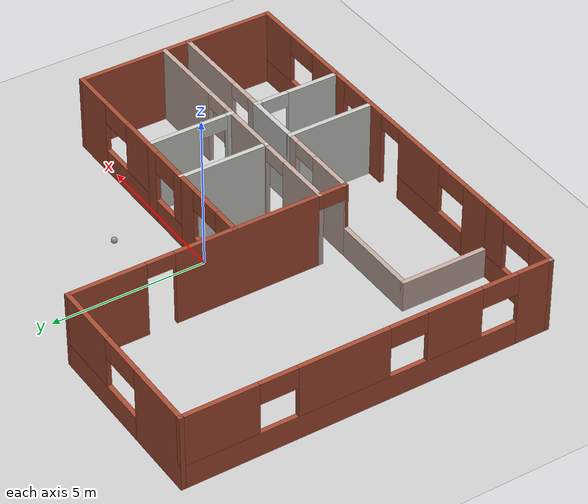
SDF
<sdf version="1.6">
 <world name="default">
  <model name="ground_plane">
   <static>1</static>
   <link name="link">
    <collision name="collision">
     <geometry><plane><normal>0 0 1</normal><size>100 100</size></plane></geometry>
     <surface><friction><ode><mu>100</mu><mu2>50</mu2></ode></friction></surface>
    </collision>
    <visual name="visual">
     <cast_shadows>0</cast_shadows>
     <geometry><plane><normal>0 0 1</normal><size>100 100</size></plane></geometry>
     <material>
      <script><uri>file://media/materials/scripts/gazebo.material</uri><name>Gazebo/Grey</name></script>
     </material>
    </visual>
   </link>
  </model>
  <model name="mybuilding">
   <pose>-0.45888 -0.542474 0 0 -0 0</pose>
   <link name="Wall_0">
    <pose>-7.19982 0.000123 0 0 -0 1.5708</pose>
    <visual name="Wall_0_Visual_0">
     <pose>-5.41232 0 1.25 0 -0 0</pose>
     <geometry><box><size>1.17536 0.15 2.5</size></box></geometry>
     <material>
      <script><uri>file://media/materials/scripts/gazebo.material</uri><name>Gazebo/Bricks</name></script>
      <ambient>1 1 1 1</ambient>
     </material>
     <meta><layer>0</layer></meta>
    </visual>
    <collision name="Wall_0_Collision_0">
     <geometry><box><size>1.17536 0.15 2.5</size></box></geometry>
     <pose>-5.41232 0 1.25 0 -0 0</pose>
    </collision>
    <visual name="Wall_0_Visual_1">
     <pose>0.587679 0 0.4 0 -0 0</pose>
     <geometry><box><size>10.8246 0.15 0.8</size></box></geometry>
     <material>
      <script><uri>file://media/materials/scripts/gazebo.material</uri><name>Gazebo/Bricks</name></script>
      <ambient>1 1 1 1</ambient>
     </material>
     <meta><layer>0</layer></meta>
    </visual>
    <collision name="Wall_0_Collision_1">
     <geometry><box><size>10.8246 0.15 0.8</size></box></geometry>
     <pose>0.587679 0 0.4 0 -0 0</pose>
    </collision>
    <visual name="Wall_0_Visual_2">
     <pose>-2.71261 0 1.65 0 -0 0</pose>
     <geometry><box><size>1.82405 0.15 1.7</size></box></geometry>
     <material>
      <script><uri>file://media/materials/scripts/gazebo.material</uri><name>Gazebo/Bricks</name></script>
      <ambient>1 1 1 1</ambient>
     </material>
     <meta><layer>0</layer></meta>
    </visual>
    <collision name="Wall_0_Collision_2">
     <geometry><box><size>1.82405 0.15 1.7</size></box></geometry>
     <pose>-2.71261 0 1.65 0 -0 0</pose>
    </collision>
    <visual name="Wall_0_Visual_3">
     <pose>0.869727 0 1.65 0 -0 0</pose>
     <geometry><box><size>2.94063 0.15 1.7</size></box></geometry>
     <material>
      <script><uri>file://media/materials/scripts/gazebo.material</uri><name>Gazebo/Bricks</name></script>
      <ambient>1 1 1 1</ambient>
     </material>
     <meta><layer>0</layer></meta>
    </visual>
    <collision name="Wall_0_Collision_3">
     <geometry><box><size>2.94063 0.15 1.7</size></box></geometry>
     <pose>0.869727 0 1.65 0 -0 0</pose>
    </collision>
    <visual name="Wall_0_Visual_4">
     <pose>4.77002 0 1.65 0 -0 0</pose>
     <geometry><box><size>2.45996 0.15 1.7</size></box></geometry>
     <material>
      <script><uri>file://media/materials/scripts/gazebo.material</uri><name>Gazebo/Bricks</name></script>
      <ambient>1 1 1 1</ambient>
     </material>
     <meta><layer>0</layer></meta>
    </visual>
    <collision name="Wall_0_Collision_4">
     <geometry><box><size>2.45996 0.15 1.7</size></box></geometry>
     <pose>4.77002 0 1.65 0 -0 0</pose>
    </collision>
    <visual name="Wall_0_Visual_5">
     <pose>-4.22464 0 2.15 0 -0 0</pose>
     <geometry><box><size>1.2 0.15 0.7</size></box></geometry>
     <material>
      <script><uri>file://media/materials/scripts/gazebo.material</uri><name>Gazebo/Bricks</name></script>
      <ambient>1 1 1 1</ambient>
     </material>
     <meta><layer>0</layer></meta>
    </visual>
    <collision name="Wall_0_Collision_5">
     <geometry><box><size>1.2 0.15 0.7</size></box></geometry>
     <pose>-4.22464 0 2.15 0 -0 0</pose>
    </collision>
    <visual name="Wall_0_Visual_6">
     <pose>-1.20059 0 2.15 0 -0 0</pose>
     <geometry><box><size>1.2 0.15 0.7</size></box></geometry>
     <material>
      <script><uri>file://media/materials/scripts/gazebo.material</uri><name>Gazebo/Bricks</name></script>
      <ambient>1 1 1 1</ambient>
     </material>
     <meta><layer>0</layer></meta>
    </visual>
    <collision name="Wall_0_Collision_6">
     <geometry><box><size>1.2 0.15 0.7</size></box></geometry>
     <pose>-1.20059 0 2.15 0 -0 0</pose>
    </collision>
    <visual name="Wall_0_Visual_7">
     <pose>2.94004 0 2.15 0 -0 0</pose>
     <geometry><box><size>1.2 0.15 0.7</size></box></geometry>
     <material>
      <script><uri>file://media/materials/scripts/gazebo.material</uri><name>Gazebo/Bricks</name></script>
      <ambient>1 1 1 1</ambient>
     </material>
     <meta><layer>0</layer></meta>
    </visual>
    <collision name="Wall_0_Collision_7">
     <geometry><box><size>1.2 0.15 0.7</size></box></geometry>
     <pose>2.94004 0 2.15 0 -0 0</pose>
    </collision>
   </link>
   <link name="Wall_10">
    <collision name="Wall_10_Collision">
     <geometry><box><size>3 0.15 1</size></box></geometry>
     <pose>0 0 0.5 0 -0 0</pose>
    </collision>
    <visual name="Wall_10_Visual">
     <pose>0 0 0.5 0 -0 0</pose>
     <geometry><box><size>3 0.15 1</size></box></geometry>
     <material>
      <script><uri>file://media/materials/scripts/gazebo.material</uri><name>Gazebo/Grey</name></script>
      <ambient>0.760784 0.662745 0.627451 1</ambient>
     </material>
     <meta><layer>0</layer></meta>
    </visual>
    <pose>-2.92506 -3.07512 0 0 -0 0</pose>
   </link>
   <link name="Wall_12">
    <pose>-4.27494 5.925 0 0 0 -4.1e-05</pose>
    <visual name="Wall_12_Visual_0">
     <pose>-1.84987 0 1.25 0 -0 0</pose>
     <geometry><box><size>2.30027 0.15 2.5</size></box></geometry>
     <material>
      <script><uri>file://media/materials/scripts/gazebo.material</uri><name>Gazebo/Bricks</name></script>
      <ambient>1 1 1 1</ambient>
     </material>
     <meta><layer>0</layer></meta>
    </visual>
    <collision name="Wall_12_Collision_0">
     <geometry><box><size>2.30027 0.15 2.5</size></box></geometry>
     <pose>-1.84987 0 1.25 0 -0 0</pose>
    </collision>
    <visual name="Wall_12_Visual_1">
     <pose>1.15013 0 0.4 0 -0 0</pose>
     <geometry><box><size>3.69973 0.15 0.8</size></box></geometry>
     <material>
      <script><uri>file://media/materials/scripts/gazebo.material</uri><name>Gazebo/Bricks</name></script>
      <ambient>1 1 1 1</ambient>
     </material>
     <meta><layer>0</layer></meta>
    </visual>
    <collision name="Wall_12_Collision_1">
     <geometry><box><size>3.69973 0.15 0.8</size></box></geometry>
     <pose>1.15013 0 0.4 0 -0 0</pose>
    </collision>
    <visual name="Wall_12_Visual_2">
     <pose>1.90013 0 1.65 0 -0 0</pose>
     <geometry><box><size>2.19973 0.15 1.7</size></box></geometry>
     <material>
      <script><uri>file://media/materials/scripts/gazebo.material</uri><name>Gazebo/Bricks</name></script>
      <ambient>1 1 1 1</ambient>
     </material>
     <meta><layer>0</layer></meta>
    </visual>
    <collision name="Wall_12_Collision_2">
     <geometry><box><size>2.19973 0.15 1.7</size></box></geometry>
     <pose>1.90013 0 1.65 0 -0 0</pose>
    </collision>
    <visual name="Wall_12_Visual_3">
     <pose>0.05027 0 2.15 0 -0 0</pose>
     <geometry><box><size>1.5 0.15 0.7</size></box></geometry>
     <material>
      <script><uri>file://media/materials/scripts/gazebo.material</uri><name>Gazebo/Bricks</name></script>
      <ambient>1 1 1 1</ambient>
     </material>
     <meta><layer>0</layer></meta>
    </visual>
    <collision name="Wall_12_Collision_3">
     <geometry><box><size>1.5 0.15 0.7</size></box></geometry>
     <pose>0.05027 0 2.15 0 -0 0</pose>
    </collision>
   </link>
   <link name="Wall_2">
    <collision name="Wall_2_Collision">
     <geometry><box><size>0.15 0.15 2.5</size></box></geometry>
     <pose>0 0 1.25 0 -0 0</pose>
    </collision>
    <visual name="Wall_2_Visual">
     <pose>0 0 1.25 0 -0 0</pose>
     <geometry><box><size>0.15 0.15 2.5</size></box></geometry>
     <material>
      <script><uri>file://media/materials/scripts/gazebo.material</uri><name>Gazebo/Grey</name></script>
      <ambient>1 1 1 1</ambient>
     </material>
     <meta><layer>0</layer></meta>
    </visual>
    <pose>-7.19982 -5.92488 0 0 -0 0</pose>
   </link>
   <link name="Wall_25">
    <pose>-1.35006 1.42488 0 0 0 -1.5708</pose>
    <visual name="Wall_25_Visual_0">
     <pose>-3.31667 0 1.25 0 -0 0</pose>
     <geometry><box><size>2.51667 0.15 2.5</size></box></geometry>
     <material>
      <script><uri>file://media/materials/scripts/gazebo.material</uri><name>Gazebo/Bricks</name></script>
      <ambient>0.760784 0.662745 0.627451 1</ambient>
     </material>
     <meta><layer>0</layer></meta>
    </visual>
    <collision name="Wall_25_Collision_0">
     <geometry><box><size>2.51667 0.15 2.5</size></box></geometry>
     <pose>-3.31667 0 1.25 0 -0 0</pose>
    </collision>
    <visual name="Wall_25_Visual_1">
     <pose>1.20636 0 1.25 0 -0 0</pose>
     <geometry><box><size>4.72939 0.15 2.5</size></box></geometry>
     <material>
      <script><uri>file://media/materials/scripts/gazebo.material</uri><name>Gazebo/Bricks</name></script>
      <ambient>0.760784 0.662745 0.627451 1</ambient>
     </material>
     <meta><layer>0</layer></meta>
    </visual>
    <collision name="Wall_25_Collision_1">
     <geometry><box><size>4.72939 0.15 2.5</size></box></geometry>
     <pose>1.20636 0 1.25 0 -0 0</pose>
    </collision>
    <visual name="Wall_25_Visual_2">
     <pose>4.52303 0 1.25 0 -0 0</pose>
     <geometry><box><size>0.103938 0.15 2.5</size></box></geometry>
     <material>
      <script><uri>file://media/materials/scripts/gazebo.material</uri><name>Gazebo/Bricks</name></script>
      <ambient>0.760784 0.662745 0.627451 1</ambient>
     </material>
     <meta><layer>0</layer></meta>
    </visual>
    <collision name="Wall_25_Collision_2">
     <geometry><box><size>0.103938 0.15 2.5</size></box></geometry>
     <pose>4.52303 0 1.25 0 -0 0</pose>
    </collision>
    <visual name="Wall_25_Visual_3">
     <pose>-1.60833 0 2.25 0 -0 0</pose>
     <geometry><box><size>0.9 0.15 0.5</size></box></geometry>
     <material>
      <script><uri>file://media/materials/scripts/gazebo.material</uri><name>Gazebo/Bricks</name></script>
      <ambient>0.760784 0.662745 0.627451 1</ambient>
     </material>
     <meta><layer>0</layer></meta>
    </visual>
    <collision name="Wall_25_Collision_3">
     <geometry><box><size>0.9 0.15 0.5</size></box></geometry>
     <pose>-1.60833 0 2.25 0 -0 0</pose>
    </collision>
    <visual name="Wall_25_Visual_4">
     <pose>4.02106 0 2.25 0 -0 0</pose>
     <geometry><box><size>0.9 0.15 0.5</size></box></geometry>
     <material>
      <script><uri>file://media/materials/scripts/gazebo.material</uri><name>Gazebo/Bricks</name></script>
      <ambient>0.760784 0.662745 0.627451 1</ambient>
     </material>
     <meta><layer>0</layer></meta>
    </visual>
    <collision name="Wall_25_Collision_4">
     <geometry><box><size>0.9 0.15 0.5</size></box></geometry>
     <pose>4.02106 0 2.25 0 -0 0</pose>
    </collision>
   </link>
   <link name="Wall_27">
    <pose>-1.42506 -5.92512 0 0 -0 0</pose>
    <visual name="Wall_27_Visual_0">
     <pose>-2.4089 0 1.25 0 -0 0</pose>
     <geometry><box><size>1.1822 0.15 2.5</size></box></geometry>
     <material>
      <script><uri>file://media/materials/scripts/gazebo.material</uri><name>Gazebo/Bricks</name></script>
      <ambient>1 1 1 1</ambient>
     </material>
     <meta><layer>0</layer></meta>
    </visual>
    <collision name="Wall_27_Collision_0">
     <geometry><box><size>1.1822 0.15 2.5</size></box></geometry>
     <pose>-2.4089 0 1.25 0 -0 0</pose>
    </collision>
    <visual name="Wall_27_Visual_1">
     <pose>2.65139 0 1.25 0 -0 0</pose>
     <geometry><box><size>0.697224 0.15 2.5</size></box></geometry>
     <material>
      <script><uri>file://media/materials/scripts/gazebo.material</uri><name>Gazebo/Bricks</name></script>
      <ambient>1 1 1 1</ambient>
     </material>
     <meta><layer>0</layer></meta>
    </visual>
    <collision name="Wall_27_Collision_1">
     <geometry><box><size>0.697224 0.15 2.5</size></box></geometry>
     <pose>2.65139 0 1.25 0 -0 0</pose>
    </collision>
    <visual name="Wall_27_Visual_2">
     <pose>-0.207514 0 0.4 0 -0 0</pose>
     <geometry><box><size>3.22058 0.15 0.8</size></box></geometry>
     <material>
      <script><uri>file://media/materials/scripts/gazebo.material</uri><name>Gazebo/Bricks</name></script>
      <ambient>1 1 1 1</ambient>
     </material>
     <meta><layer>0</layer></meta>
    </visual>
    <collision name="Wall_27_Collision_2">
     <geometry><box><size>3.22058 0.15 0.8</size></box></geometry>
     <pose>-0.207514 0 0.4 0 -0 0</pose>
    </collision>
    <visual name="Wall_27_Visual_3">
     <pose>0.392486 0 1.65 0 -0 0</pose>
     <geometry><box><size>2.02058 0.15 1.7</size></box></geometry>
     <material>
      <script><uri>file://media/materials/scripts/gazebo.material</uri><name>Gazebo/Bricks</name></script>
      <ambient>1 1 1 1</ambient>
     </material>
     <meta><layer>0</layer></meta>
    </visual>
    <collision name="Wall_27_Collision_3">
     <geometry><box><size>2.02058 0.15 1.7</size></box></geometry>
     <pose>0.392486 0 1.65 0 -0 0</pose>
    </collision>
    <visual name="Wall_27_Visual_4">
     <pose>-1.2178 0 2.15 0 -0 0</pose>
     <geometry><box><size>1.2 0.15 0.7</size></box></geometry>
     <material>
      <script><uri>file://media/materials/scripts/gazebo.material</uri><name>Gazebo/Bricks</name></script>
      <ambient>1 1 1 1</ambient>
     </material>
     <meta><layer>0</layer></meta>
    </visual>
    <collision name="Wall_27_Collision_4">
     <geometry><box><size>1.2 0.15 0.7</size></box></geometry>
     <pose>-1.2178 0 2.15 0 -0 0</pose>
    </collision>
    <visual name="Wall_27_Visual_5">
     <pose>1.85278 0 2.25 0 -0 0</pose>
     <geometry><box><size>0.9 0.15 0.5</size></box></geometry>
     <material>
      <script><uri>file://media/materials/scripts/gazebo.material</uri><name>Gazebo/Bricks</name></script>
      <ambient>1 1 1 1</ambient>
     </material>
     <meta><layer>0</layer></meta>
    </visual>
    <collision name="Wall_27_Collision_5">
     <geometry><box><size>0.9 0.15 0.5</size></box></geometry>
     <pose>1.85278 0 2.25 0 -0 0</pose>
    </collision>
   </link>
   <link name="Wall_29">
    <pose>0.074944 -3.07512 0 0 -0 0</pose>
    <visual name="Wall_29_Visual_0">
     <pose>-0.682303 0 1.25 0 -0 0</pose>
     <geometry><box><size>1.63539 0.15 2.5</size></box></geometry>
     <material>
      <script><uri>file://media/materials/scripts/gazebo.material</uri><name>Gazebo/Grey</name></script>
      <ambient>0.760784 0.662745 0.627451 1</ambient>
     </material>
     <meta><layer>0</layer></meta>
    </visual>
    <collision name="Wall_29_Collision_0">
     <geometry><box><size>1.63539 0.15 2.5</size></box></geometry>
     <pose>-0.682303 0 1.25 0 -0 0</pose>
    </collision>
    <visual name="Wall_29_Visual_1">
     <pose>1.2677 0 1.25 0 -0 0</pose>
     <geometry><box><size>0.464606 0.15 2.5</size></box></geometry>
     <material>
      <script><uri>file://media/materials/scripts/gazebo.material</uri><name>Gazebo/Grey</name></script>
      <ambient>0.760784 0.662745 0.627451 1</ambient>
     </material>
     <meta><layer>0</layer></meta>
    </visual>
    <collision name="Wall_29_Collision_1">
     <geometry><box><size>0.464606 0.15 2.5</size></box></geometry>
     <pose>1.2677 0 1.25 0 -0 0</pose>
    </collision>
    <visual name="Wall_29_Visual_2">
     <pose>0.585394 0 2.25 0 -0 0</pose>
     <geometry><box><size>0.9 0.15 0.5</size></box></geometry>
     <material>
      <script><uri>file://media/materials/scripts/gazebo.material</uri><name>Gazebo/Grey</name></script>
      <ambient>0.760784 0.662745 0.627451 1</ambient>
     </material>
     <meta><layer>0</layer></meta>
    </visual>
    <collision name="Wall_29_Collision_2">
     <geometry><box><size>0.9 0.15 0.5</size></box></geometry>
     <pose>0.585394 0 2.25 0 -0 0</pose>
    </collision>
   </link>
   <link name="Wall_31">
    <collision name="Wall_31_Collision">
     <geometry><box><size>3 0.15 2.5</size></box></geometry>
     <pose>0 0 1.25 0 -0 0</pose>
    </collision>
    <visual name="Wall_31_Visual">
     <pose>0 0 1.25 0 -0 0</pose>
     <geometry><box><size>3 0.15 2.5</size></box></geometry>
     <material>
      <script><uri>file://media/materials/scripts/gazebo.material</uri><name>Gazebo/CeilingTiled</name></script>
      <ambient>0.760784 0.662745 0.627451 1</ambient>
     </material>
     <meta><layer>0</layer></meta>
    </visual>
    <pose>1.49994 -4.50012 0 0 0 -1.5708</pose>
   </link>
   <link name="Wall_33">
    <pose>2.42495 -5.92512 0 0 -0 0</pose>
    <visual name="Wall_33_Visual_0">
     <pose>-0.794872 0 1.25 0 -0 0</pose>
     <geometry><box><size>0.410255 0.15 2.5</size></box></geometry>
     <material>
      <script><uri>file://media/materials/scripts/gazebo.material</uri><name>Gazebo/Bricks</name></script>
      <ambient>1 1 1 1</ambient>
     </material>
     <meta><layer>0</layer></meta>
    </visual>
    <collision name="Wall_33_Collision_0">
     <geometry><box><size>0.410255 0.15 2.5</size></box></geometry>
     <pose>-0.794872 0 1.25 0 -0 0</pose>
    </collision>
    <visual name="Wall_33_Visual_1">
     <pose>0.205128 0 0.4 0 -0 0</pose>
     <geometry><box><size>1.58974 0.15 0.8</size></box></geometry>
     <material>
      <script><uri>file://media/materials/scripts/gazebo.material</uri><name>Gazebo/Bricks</name></script>
      <ambient>1 1 1 1</ambient>
     </material>
     <meta><layer>0</layer></meta>
    </visual>
    <collision name="Wall_33_Collision_1">
     <geometry><box><size>1.58974 0.15 0.8</size></box></geometry>
     <pose>0.205128 0 0.4 0 -0 0</pose>
    </collision>
    <visual name="Wall_33_Visual_2">
     <pose>0.705128 0 1.65 0 -0 0</pose>
     <geometry><box><size>0.589745 0.15 1.7</size></box></geometry>
     <material>
      <script><uri>file://media/materials/scripts/gazebo.material</uri><name>Gazebo/Bricks</name></script>
      <ambient>1 1 1 1</ambient>
     </material>
     <meta><layer>0</layer></meta>
    </visual>
    <collision name="Wall_33_Collision_2">
     <geometry><box><size>0.589745 0.15 1.7</size></box></geometry>
     <pose>0.705128 0 1.65 0 -0 0</pose>
    </collision>
    <visual name="Wall_33_Visual_3">
     <pose>-0.089745 0 2.15 0 -0 0</pose>
     <geometry><box><size>1 0.15 0.7</size></box></geometry>
     <material>
      <script><uri>file://media/materials/scripts/gazebo.material</uri><name>Gazebo/Bricks</name></script>
      <ambient>1 1 1 1</ambient>
     </material>
     <meta><layer>0</layer></meta>
    </visual>
    <collision name="Wall_33_Collision_3">
     <geometry><box><size>1 0.15 0.7</size></box></geometry>
     <pose>-0.089745 0 2.15 0 -0 0</pose>
    </collision>
   </link>
   <link name="Wall_37">
    <collision name="Wall_37_Collision">
     <geometry><box><size>2 0.15 2.5</size></box></geometry>
     <pose>0 0 1.25 0 -0 0</pose>
    </collision>
    <visual name="Wall_37_Visual">
     <pose>0 0 1.25 0 -0 0</pose>
     <geometry><box><size>2 0.15 2.5</size></box></geometry>
     <material>
      <script><uri>file://media/materials/scripts/gazebo.material</uri><name>Gazebo/CeilingTiled</name></script>
      <ambient>0.760784 0.662745 0.627451 1</ambient>
     </material>
     <meta><layer>0</layer></meta>
    </visual>
    <pose>2.42495 -3.07512 0 0 -0 0</pose>
   </link>
   <link name="Wall_39">
    <pose>3.34994 -4.50012 0 0 0 -1.5708</pose>
    <visual name="Wall_39_Visual_0">
     <pose>-1.36868 0 1.25 0 -0 0</pose>
     <geometry><box><size>0.262636 0.15 2.5</size></box></geometry>
     <material>
      <script><uri>file://media/materials/scripts/gazebo.material</uri><name>Gazebo/CeilingTiled</name></script>
      <ambient>0.760784 0.662745 0.627451 1</ambient>
     </material>
     <meta><layer>0</layer></meta>
    </visual>
    <collision name="Wall_39_Collision_0">
     <geometry><box><size>0.262636 0.15 2.5</size></box></geometry>
     <pose>-1.36868 0 1.25 0 -0 0</pose>
    </collision>
    <visual name="Wall_39_Visual_1">
     <pose>0.581318 0 1.25 0 -0 0</pose>
     <geometry><box><size>1.83736 0.15 2.5</size></box></geometry>
     <material>
      <script><uri>file://media/materials/scripts/gazebo.material</uri><name>Gazebo/CeilingTiled</name></script>
      <ambient>0.760784 0.662745 0.627451 1</ambient>
     </material>
     <meta><layer>0</layer></meta>
    </visual>
    <collision name="Wall_39_Collision_1">
     <geometry><box><size>1.83736 0.15 2.5</size></box></geometry>
     <pose>0.581318 0 1.25 0 -0 0</pose>
    </collision>
    <visual name="Wall_39_Visual_2">
     <pose>-0.787364 0 2.25 0 -0 0</pose>
     <geometry><box><size>0.9 0.15 0.5</size></box></geometry>
     <material>
      <script><uri>file://media/materials/scripts/gazebo.material</uri><name>Gazebo/CeilingTiled</name></script>
      <ambient>0.760784 0.662745 0.627451 1</ambient>
     </material>
     <meta><layer>0</layer></meta>
    </visual>
    <collision name="Wall_39_Collision_2">
     <geometry><box><size>0.9 0.15 0.5</size></box></geometry>
     <pose>-0.787364 0 2.25 0 -0 0</pose>
    </collision>
   </link>
   <link name="Wall_41">
    <pose>5.27494 -5.92512 0 0 -0 0</pose>
    <visual name="Wall_41_Visual_0">
     <pose>-1.35089 0 1.25 0 -0 0</pose>
     <geometry><box><size>1.29821 0.15 2.5</size></box></geometry>
     <material>
      <script><uri>file://media/materials/scripts/gazebo.material</uri><name>Gazebo/Bricks</name></script>
      <ambient>1 1 1 1</ambient>
     </material>
     <meta><layer>0</layer></meta>
    </visual>
    <collision name="Wall_41_Collision_0">
     <geometry><box><size>1.29821 0.15 2.5</size></box></geometry>
     <pose>-1.35089 0 1.25 0 -0 0</pose>
    </collision>
    <visual name="Wall_41_Visual_1">
     <pose>0.649107 0 0.4 0 -0 0</pose>
     <geometry><box><size>2.70179 0.15 0.8</size></box></geometry>
     <material>
      <script><uri>file://media/materials/scripts/gazebo.material</uri><name>Gazebo/Bricks</name></script>
      <ambient>1 1 1 1</ambient>
     </material>
     <meta><layer>0</layer></meta>
    </visual>
    <collision name="Wall_41_Collision_1">
     <geometry><box><size>2.70179 0.15 0.8</size></box></geometry>
     <pose>0.649107 0 0.4 0 -0 0</pose>
    </collision>
    <visual name="Wall_41_Visual_2">
     <pose>1.24911 0 1.65 0 -0 0</pose>
     <geometry><box><size>1.50179 0.15 1.7</size></box></geometry>
     <material>
      <script><uri>file://media/materials/scripts/gazebo.material</uri><name>Gazebo/Bricks</name></script>
      <ambient>1 1 1 1</ambient>
     </material>
     <meta><layer>0</layer></meta>
    </visual>
    <collision name="Wall_41_Collision_2">
     <geometry><box><size>1.50179 0.15 1.7</size></box></geometry>
     <pose>1.24911 0 1.65 0 -0 0</pose>
    </collision>
    <visual name="Wall_41_Visual_3">
     <pose>-0.101786 0 2.15 0 -0 0</pose>
     <geometry><box><size>1.2 0.15 0.7</size></box></geometry>
     <material>
      <script><uri>file://media/materials/scripts/gazebo.material</uri><name>Gazebo/Bricks</name></script>
      <ambient>1 1 1 1</ambient>
     </material>
     <meta><layer>0</layer></meta>
    </visual>
    <collision name="Wall_41_Collision_3">
     <geometry><box><size>1.2 0.15 0.7</size></box></geometry>
     <pose>-0.101786 0 2.15 0 -0 0</pose>
    </collision>
   </link>
   <link name="Wall_43">
    <pose>5.27494 -3.07512 0 0 -0 0</pose>
    <visual name="Wall_43_Visual_0">
     <pose>-1.78766 0 1.25 0 -0 0</pose>
     <geometry><box><size>0.424688 0.15 2.5</size></box></geometry>
     <material>
      <script><uri>file://media/materials/scripts/gazebo.material</uri><name>Gazebo/Grey</name></script>
      <ambient>0.760784 0.662745 0.627451 1</ambient>
     </material>
     <meta><layer>0</layer></meta>
    </visual>
    <collision name="Wall_43_Collision_0">
     <geometry><box><size>0.424688 0.15 2.5</size></box></geometry>
     <pose>-1.78766 0 1.25 0 -0 0</pose>
    </collision>
    <visual name="Wall_43_Visual_1">
     <pose>0.662344 0 1.25 0 -0 0</pose>
     <geometry><box><size>2.67531 0.15 2.5</size></box></geometry>
     <material>
      <script><uri>file://media/materials/scripts/gazebo.material</uri><name>Gazebo/Grey</name></script>
      <ambient>0.760784 0.662745 0.627451 1</ambient>
     </material>
     <meta><layer>0</layer></meta>
    </visual>
    <collision name="Wall_43_Collision_1">
     <geometry><box><size>2.67531 0.15 2.5</size></box></geometry>
     <pose>0.662344 0 1.25 0 -0 0</pose>
    </collision>
    <visual name="Wall_43_Visual_2">
     <pose>-1.12531 0 2.25 0 -0 0</pose>
     <geometry><box><size>0.9 0.15 0.5</size></box></geometry>
     <material>
      <script><uri>file://media/materials/scripts/gazebo.material</uri><name>Gazebo/Grey</name></script>
      <ambient>0.760784 0.662745 0.627451 1</ambient>
     </material>
     <meta><layer>0</layer></meta>
    </visual>
    <collision name="Wall_43_Collision_2">
     <geometry><box><size>0.9 0.15 0.5</size></box></geometry>
     <pose>-1.12531 0 2.25 0 -0 0</pose>
    </collision>
   </link>
   <link name="Wall_45">
    <collision name="Wall_45_Collision">
     <geometry><box><size>3 0.15 2.5</size></box></geometry>
     <pose>0 0 1.25 0 -0 0</pose>
    </collision>
    <visual name="Wall_45_Visual">
     <pose>0 0 1.25 0 -0 0</pose>
     <geometry><box><size>3 0.15 2.5</size></box></geometry>
     <material>
      <script><uri>file://media/materials/scripts/gazebo.material</uri><name>Gazebo/Bricks</name></script>
      <ambient>1 1 1 1</ambient>
     </material>
     <meta><layer>0</layer></meta>
    </visual>
    <pose>7.19994 -4.50012 0 0 0 -1.5708</pose>
   </link>
   <link name="Wall_47">
    <collision name="Wall_47_Collision">
     <geometry><box><size>1 0.15 2.5</size></box></geometry>
     <pose>0 0 1.25 0 -0 0</pose>
    </collision>
    <visual name="Wall_47_Visual">
     <pose>0 0 1.25 0 -0 0</pose>
     <geometry><box><size>1 0.15 2.5</size></box></geometry>
     <material>
      <script><uri>file://media/materials/scripts/gazebo.material</uri><name>Gazebo/Bricks</name></script>
      <ambient>1 1 1 1</ambient>
     </material>
     <meta><layer>0</layer></meta>
    </visual>
    <pose>7.19994 -2.65012 0 0 -0 1.5708</pose>
   </link>
   <link name="Wall_56">
    <pose>2.92495 -2.22512 0 0 -0 3.14159</pose>
    <visual name="Wall_56_Visual_0">
     <pose>-2.98908 0 1.25 0 -0 0</pose>
     <geometry><box><size>2.72184 0.15 2.5</size></box></geometry>
     <material>
      <script><uri>file://media/materials/scripts/gazebo.material</uri><name>Gazebo/Grey</name></script>
      <ambient>0.760784 0.662745 0.627451 1</ambient>
     </material>
     <meta><layer>0</layer></meta>
    </visual>
    <collision name="Wall_56_Collision_0">
     <geometry><box><size>2.72184 0.15 2.5</size></box></geometry>
     <pose>-2.98908 0 1.25 0 -0 0</pose>
    </collision>
    <visual name="Wall_56_Visual_1">
     <pose>0.403649 0 1.25 0 -0 0</pose>
     <geometry><box><size>2.26363 0.15 2.5</size></box></geometry>
     <material>
      <script><uri>file://media/materials/scripts/gazebo.material</uri><name>Gazebo/Grey</name></script>
      <ambient>0.760784 0.662745 0.627451 1</ambient>
     </material>
     <meta><layer>0</layer></meta>
    </visual>
    <collision name="Wall_56_Collision_1">
     <geometry><box><size>2.26363 0.15 2.5</size></box></geometry>
     <pose>0.403649 0 1.25 0 -0 0</pose>
    </collision>
    <visual name="Wall_56_Visual_2">
     <pose>3.39273 0 1.25 0 -0 0</pose>
     <geometry><box><size>1.91454 0.15 2.5</size></box></geometry>
     <material>
      <script><uri>file://media/materials/scripts/gazebo.material</uri><name>Gazebo/Grey</name></script>
      <ambient>0.760784 0.662745 0.627451 1</ambient>
     </material>
     <meta><layer>0</layer></meta>
    </visual>
    <collision name="Wall_56_Collision_2">
     <geometry><box><size>1.91454 0.15 2.5</size></box></geometry>
     <pose>3.39273 0 1.25 0 -0 0</pose>
    </collision>
    <visual name="Wall_56_Visual_3">
     <pose>-1.17816 0 2.25 0 -0 0</pose>
     <geometry><box><size>0.9 0.15 0.5</size></box></geometry>
     <material>
      <script><uri>file://media/materials/scripts/gazebo.material</uri><name>Gazebo/Grey</name></script>
      <ambient>0.760784 0.662745 0.627451 1</ambient>
     </material>
     <meta><layer>0</layer></meta>
    </visual>
    <collision name="Wall_56_Collision_3">
     <geometry><box><size>0.9 0.15 0.5</size></box></geometry>
     <pose>-1.17816 0 2.25 0 -0 0</pose>
    </collision>
    <visual name="Wall_56_Visual_4">
     <pose>1.98546 0 2.25 0 -0 0</pose>
     <geometry><box><size>0.9 0.15 0.5</size></box></geometry>
     <material>
      <script><uri>file://media/materials/scripts/gazebo.material</uri><name>Gazebo/Grey</name></script>
      <ambient>0.760784 0.662745 0.627451 1</ambient>
     </material>
     <meta><layer>0</layer></meta>
    </visual>
    <collision name="Wall_56_Collision_4">
     <geometry><box><size>0.9 0.15 0.5</size></box></geometry>
     <pose>1.98546 0 2.25 0 -0 0</pose>
    </collision>
   </link>
   <link name="Wall_58">
    <collision name="Wall_58_Collision">
     <geometry><box><size>3 0.15 2.5</size></box></geometry>
     <pose>0 0 1.25 0 -0 0</pose>
    </collision>
    <visual name="Wall_58_Visual">
     <pose>0 0 1.25 0 -0 0</pose>
     <geometry><box><size>3 0.15 2.5</size></box></geometry>
     <material>
      <script><uri>file://media/materials/scripts/gazebo.material</uri><name>Gazebo/Bricks</name></script>
      <ambient>1 1 1 1</ambient>
     </material>
     <meta><layer>0</layer></meta>
    </visual>
    <pose>7.19994 -0.80012 0 0 -0 1.5708</pose>
   </link>
   <link name="Wall_6">
    <pose>-5.77494 -5.925 0 0 0 -8.5e-05</pose>
    <visual name="Wall_6_Visual_0">
     <pose>-1.04251 0 1.25 0 -0 0</pose>
     <geometry><box><size>0.914984 0.15 2.5</size></box></geometry>
     <material>
      <script><uri>file://media/materials/scripts/gazebo.material</uri><name>Gazebo/Bricks</name></script>
      <ambient>1 1 1 1</ambient>
     </material>
     <meta><layer>0</layer></meta>
    </visual>
    <collision name="Wall_6_Collision_0">
     <geometry><box><size>0.914984 0.15 2.5</size></box></geometry>
     <pose>-1.04251 0 1.25 0 -0 0</pose>
    </collision>
    <visual name="Wall_6_Visual_1">
     <pose>0.457492 0 0.4 0 -0 0</pose>
     <geometry><box><size>2.08502 0.15 0.8</size></box></geometry>
     <material>
      <script><uri>file://media/materials/scripts/gazebo.material</uri><name>Gazebo/Bricks</name></script>
      <ambient>1 1 1 1</ambient>
     </material>
     <meta><layer>0</layer></meta>
    </visual>
    <collision name="Wall_6_Collision_1">
     <geometry><box><size>2.08502 0.15 0.8</size></box></geometry>
     <pose>0.457492 0 0.4 0 -0 0</pose>
    </collision>
    <visual name="Wall_6_Visual_2">
     <pose>1.05749 0 1.65 0 -0 0</pose>
     <geometry><box><size>0.885016 0.15 1.7</size></box></geometry>
     <material>
      <script><uri>file://media/materials/scripts/gazebo.material</uri><name>Gazebo/Bricks</name></script>
      <ambient>1 1 1 1</ambient>
     </material>
     <meta><layer>0</layer></meta>
    </visual>
    <collision name="Wall_6_Collision_2">
     <geometry><box><size>0.885016 0.15 1.7</size></box></geometry>
     <pose>1.05749 0 1.65 0 -0 0</pose>
    </collision>
    <visual name="Wall_6_Visual_3">
     <pose>0.014984 0 2.15 0 -0 0</pose>
     <geometry><box><size>1.2 0.15 0.7</size></box></geometry>
     <material>
      <script><uri>file://media/materials/scripts/gazebo.material</uri><name>Gazebo/Bricks</name></script>
      <ambient>1 1 1 1</ambient>
     </material>
     <meta><layer>0</layer></meta>
    </visual>
    <collision name="Wall_6_Collision_3">
     <geometry><box><size>1.2 0.15 0.7</size></box></geometry>
     <pose>0.014984 0 2.15 0 -0 0</pose>
    </collision>
   </link>
   <link name="Wall_67">
    <pose>5.27494 0.624881 0 0 -0 3.14159</pose>
    <visual name="Wall_67_Visual_0">
     <pose>-1.22585 0 1.25 0 -0 0</pose>
     <geometry><box><size>1.54831 0.15 2.5</size></box></geometry>
     <material>
      <script><uri>file://media/materials/scripts/gazebo.material</uri><name>Gazebo/Bricks</name></script>
      <ambient>1 1 1 1</ambient>
     </material>
     <meta><layer>0</layer></meta>
    </visual>
    <collision name="Wall_67_Collision_0">
     <geometry><box><size>1.54831 0.15 2.5</size></box></geometry>
     <pose>-1.22585 0 1.25 0 -0 0</pose>
    </collision>
    <visual name="Wall_67_Visual_1">
     <pose>0.774155 0 0.4 0 -0 0</pose>
     <geometry><box><size>2.45169 0.15 0.8</size></box></geometry>
     <material>
      <script><uri>file://media/materials/scripts/gazebo.material</uri><name>Gazebo/Bricks</name></script>
      <ambient>1 1 1 1</ambient>
     </material>
     <meta><layer>0</layer></meta>
    </visual>
    <collision name="Wall_67_Collision_1">
     <geometry><box><size>2.45169 0.15 0.8</size></box></geometry>
     <pose>0.774155 0 0.4 0 -0 0</pose>
    </collision>
    <visual name="Wall_67_Visual_2">
     <pose>1.37416 0 1.65 0 -0 0</pose>
     <geometry><box><size>1.25169 0.15 1.7</size></box></geometry>
     <material>
      <script><uri>file://media/materials/scripts/gazebo.material</uri><name>Gazebo/Bricks</name></script>
      <ambient>1 1 1 1</ambient>
     </material>
     <meta><layer>0</layer></meta>
    </visual>
    <collision name="Wall_67_Collision_2">
     <geometry><box><size>1.25169 0.15 1.7</size></box></geometry>
     <pose>1.37416 0 1.65 0 -0 0</pose>
    </collision>
    <visual name="Wall_67_Visual_3">
     <pose>0.14831 0 2.15 0 -0 0</pose>
     <geometry><box><size>1.2 0.15 0.7</size></box></geometry>
     <material>
      <script><uri>file://media/materials/scripts/gazebo.material</uri><name>Gazebo/Bricks</name></script>
      <ambient>1 1 1 1</ambient>
     </material>
     <meta><layer>0</layer></meta>
    </visual>
    <collision name="Wall_67_Collision_3">
     <geometry><box><size>1.2 0.15 0.7</size></box></geometry>
     <pose>0.14831 0 2.15 0 -0 0</pose>
    </collision>
   </link>
   <link name="Wall_69">
    <pose>3.34994 -0.80012 0 0 0 -1.5708</pose>
    <visual name="Wall_69_Visual_0">
     <pose>-0.588732 0 1.25 0 -0 0</pose>
     <geometry><box><size>1.82254 0.15 2.5</size></box></geometry>
     <material>
      <script><uri>file://media/materials/scripts/gazebo.material</uri><name>Gazebo/CeilingTiled</name></script>
      <ambient>0.760784 0.662745 0.627451 1</ambient>
     </material>
     <meta><layer>0</layer></meta>
    </visual>
    <collision name="Wall_69_Collision_0">
     <geometry><box><size>1.82254 0.15 2.5</size></box></geometry>
     <pose>-0.588732 0 1.25 0 -0 0</pose>
    </collision>
    <visual name="Wall_69_Visual_1">
     <pose>1.36127 0 1.25 0 -0 0</pose>
     <geometry><box><size>0.277464 0.15 2.5</size></box></geometry>
     <material>
      <script><uri>file://media/materials/scripts/gazebo.material</uri><name>Gazebo/CeilingTiled</name></script>
      <ambient>0.760784 0.662745 0.627451 1</ambient>
     </material>
     <meta><layer>0</layer></meta>
    </visual>
    <collision name="Wall_69_Collision_1">
     <geometry><box><size>0.277464 0.15 2.5</size></box></geometry>
     <pose>1.36127 0 1.25 0 -0 0</pose>
    </collision>
    <visual name="Wall_69_Visual_2">
     <pose>0.772536 0 2.25 0 -0 0</pose>
     <geometry><box><size>0.9 0.15 0.5</size></box></geometry>
     <material>
      <script><uri>file://media/materials/scripts/gazebo.material</uri><name>Gazebo/CeilingTiled</name></script>
      <ambient>0.760784 0.662745 0.627451 1</ambient>
     </material>
     <meta><layer>0</layer></meta>
    </visual>
    <collision name="Wall_69_Collision_2">
     <geometry><box><size>0.9 0.15 0.5</size></box></geometry>
     <pose>0.772536 0 2.25 0 -0 0</pose>
    </collision>
   </link>
   <link name="Wall_71">
    <pose>2.42495 0.624881 0 0 -0 3.14159</pose>
    <visual name="Wall_71_Visual_0">
     <pose>-0.705128 0 1.25 0 -0 0</pose>
     <geometry><box><size>0.589745 0.15 2.5</size></box></geometry>
     <material>
      <script><uri>file://media/materials/scripts/gazebo.material</uri><name>Gazebo/Bricks</name></script>
      <ambient>1 1 1 1</ambient>
     </material>
     <meta><layer>0</layer></meta>
    </visual>
    <collision name="Wall_71_Collision_0">
     <geometry><box><size>0.589745 0.15 2.5</size></box></geometry>
     <pose>-0.705128 0 1.25 0 -0 0</pose>
    </collision>
    <visual name="Wall_71_Visual_1">
     <pose>0.294872 0 0.4 0 -0 0</pose>
     <geometry><box><size>1.41026 0.15 0.8</size></box></geometry>
     <material>
      <script><uri>file://media/materials/scripts/gazebo.material</uri><name>Gazebo/Bricks</name></script>
      <ambient>1 1 1 1</ambient>
     </material>
     <meta><layer>0</layer></meta>
    </visual>
    <collision name="Wall_71_Collision_1">
     <geometry><box><size>1.41026 0.15 0.8</size></box></geometry>
     <pose>0.294872 0 0.4 0 -0 0</pose>
    </collision>
    <visual name="Wall_71_Visual_2">
     <pose>0.794872 0 1.65 0 -0 0</pose>
     <geometry><box><size>0.410255 0.15 1.7</size></box></geometry>
     <material>
      <script><uri>file://media/materials/scripts/gazebo.material</uri><name>Gazebo/Bricks</name></script>
      <ambient>1 1 1 1</ambient>
     </material>
     <meta><layer>0</layer></meta>
    </visual>
    <collision name="Wall_71_Collision_2">
     <geometry><box><size>0.410255 0.15 1.7</size></box></geometry>
     <pose>0.794872 0 1.65 0 -0 0</pose>
    </collision>
    <visual name="Wall_71_Visual_3">
     <pose>0.089745 0 2.15 0 -0 0</pose>
     <geometry><box><size>1 0.15 0.7</size></box></geometry>
     <material>
      <script><uri>file://media/materials/scripts/gazebo.material</uri><name>Gazebo/Bricks</name></script>
      <ambient>1 1 1 1</ambient>
     </material>
     <meta><layer>0</layer></meta>
    </visual>
    <collision name="Wall_71_Collision_3">
     <geometry><box><size>1 0.15 0.7</size></box></geometry>
     <pose>0.089745 0 2.15 0 -0 0</pose>
    </collision>
   </link>
   <link name="Wall_73">
    <collision name="Wall_73_Collision">
     <geometry><box><size>3 0.15 2.5</size></box></geometry>
     <pose>0 0 1.25 0 -0 0</pose>
    </collision>
    <visual name="Wall_73_Visual">
     <pose>0 0 1.25 0 -0 0</pose>
     <geometry><box><size>3 0.15 2.5</size></box></geometry>
     <material>
      <script><uri>file://media/materials/scripts/gazebo.material</uri><name>Gazebo/CeilingTiled</name></script>
      <ambient>0.760784 0.662745 0.627451 1</ambient>
     </material>
     <meta><layer>0</layer></meta>
    </visual>
    <pose>1.49994 -0.80012 0 0 0 -1.5708</pose>
   </link>
   <link name="Wall_75">
    <pose>0.074944 0.624881 0 0 -0 3.14159</pose>
    <visual name="Wall_75_Visual_0">
     <pose>-1.08682 0 1.25 0 -0 0</pose>
     <geometry><box><size>0.826369 0.15 2.5</size></box></geometry>
     <material>
      <script><uri>file://media/materials/scripts/gazebo.material</uri><name>Gazebo/Bricks</name></script>
      <ambient>1 1 1 1</ambient>
     </material>
     <meta><layer>0</layer></meta>
    </visual>
    <collision name="Wall_75_Collision_0">
     <geometry><box><size>0.826369 0.15 2.5</size></box></geometry>
     <pose>-1.08682 0 1.25 0 -0 0</pose>
    </collision>
    <visual name="Wall_75_Visual_1">
     <pose>0.413184 0 0.4 0 -0 0</pose>
     <geometry><box><size>2.17363 0.15 0.8</size></box></geometry>
     <material>
      <script><uri>file://media/materials/scripts/gazebo.material</uri><name>Gazebo/Bricks</name></script>
      <ambient>1 1 1 1</ambient>
     </material>
     <meta><layer>0</layer></meta>
    </visual>
    <collision name="Wall_75_Collision_1">
     <geometry><box><size>2.17363 0.15 0.8</size></box></geometry>
     <pose>0.413184 0 0.4 0 -0 0</pose>
    </collision>
    <visual name="Wall_75_Visual_2">
     <pose>1.01318 0 1.65 0 -0 0</pose>
     <geometry><box><size>0.973631 0.15 1.7</size></box></geometry>
     <material>
      <script><uri>file://media/materials/scripts/gazebo.material</uri><name>Gazebo/Bricks</name></script>
      <ambient>1 1 1 1</ambient>
     </material>
     <meta><layer>0</layer></meta>
    </visual>
    <collision name="Wall_75_Collision_2">
     <geometry><box><size>0.973631 0.15 1.7</size></box></geometry>
     <pose>1.01318 0 1.65 0 -0 0</pose>
    </collision>
    <visual name="Wall_75_Visual_3">
     <pose>-0.073631 0 2.15 0 -0 0</pose>
     <geometry><box><size>1.2 0.15 0.7</size></box></geometry>
     <material>
      <script><uri>file://media/materials/scripts/gazebo.material</uri><name>Gazebo/Bricks</name></script>
      <ambient>1 1 1 1</ambient>
     </material>
     <meta><layer>0</layer></meta>
    </visual>
    <collision name="Wall_75_Collision_3">
     <geometry><box><size>1.2 0.15 0.7</size></box></geometry>
     <pose>-0.073631 0 2.15 0 -0 0</pose>
    </collision>
   </link>
   <link name="Wall_8">
    <collision name="Wall_8_Collision">
     <geometry><box><size>3 0.15 1</size></box></geometry>
     <pose>0 0 0.5 0 -0 0</pose>
    </collision>
    <visual name="Wall_8_Visual">
     <pose>0 0 0.5 0 -0 0</pose>
     <geometry><box><size>3 0.15 1</size></box></geometry>
     <material>
      <script><uri>file://media/materials/scripts/gazebo.material</uri><name>Gazebo/Grey</name></script>
      <ambient>0.760784 0.662745 0.627451 1</ambient>
     </material>
     <meta><layer>0</layer></meta>
    </visual>
    <pose>-4.35006 -4.50012 0 0 -0 1.5708</pose>
   </link>
   <static>1</static>
  </model>
  <model name="my_ball">
   <link name="link_1">
    <inertial>
     <mass>1</mass>
     <inertia><ixx>0.1</ixx><ixy>0</ixy><ixz>0</ixz><iyy>0.1</iyy><iyz>0</iyz><izz>0.1</izz></inertia>
    </inertial>
    <visual name="visual">
     <geometry><sphere><radius>0.1</radius></sphere></geometry>
     <material>
      <lighting>1</lighting>
      <script><uri>file://media/materials/scripts/gazebo.material</uri><name>Gazebo/Grey</name></script>
      <ambient>1 1 1 1</ambient>
      <diffuse>1 1 1 1</diffuse>
      <specular>1 1 1 1</specular>
      <emissive>1 1 1 1</emissive>
      <shader type="vertex"><normal_map>__default__</normal_map></shader>
     </material>
    </visual>
    <collision name="collision">
     <geometry><sphere><radius>0.1</radius></sphere></geometry>
     <surface>
      <friction>
       <ode><mu>1</mu><mu2>1</mu2><fdir1>0 0 0</fdir1><slip1>0</slip1><slip2>0</slip2></ode>
       <torsional>
        <coefficient>1</coefficient>
        <patch_radius>0</patch_radius>
        <surface_radius>0</surface_radius>
        <use_patch_radius>1</use_patch_radius>
        <ode><slip>0</slip></ode>
       </torsional>
      </friction>
      <bounce><restitution_coefficient>0</restitution_coefficient><threshold>1e+06</threshold></bounce>
      <contact>
       <collide_without_contact>0</collide_without_contact>
       <collide_without_contact_bitmask>1</collide_without_contact_bitmask>
       <collide_bitmask>1</collide_bitmask>
       <ode>
        <soft_cfm>0</soft_cfm>
        <soft_erp>0.2</soft_erp>
        <kp>1e+13</kp>
        <kd>1</kd>
        <max_vel>0.01</max_vel>
        <min_depth>0</min_depth>
       </ode>
       <bullet>
        <split_impulse>1</split_impulse>
        <split_impulse_penetration_threshold>-0.01</split_impulse_penetration_threshold>
        <soft_cfm>0</soft_cfm>
        <soft_erp>0.2</soft_erp>
        <kp>1e+13</kp>
        <kd>1</kd>
       </bullet>
      </contact>
     </surface>
    </collision>
   </link>
   <static>0</static>
   <pose>1.76573 1.95548 0.5 0 -0 0</pose>
  </model>
 </world>
</sdf>
